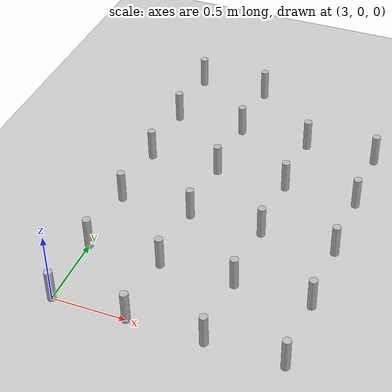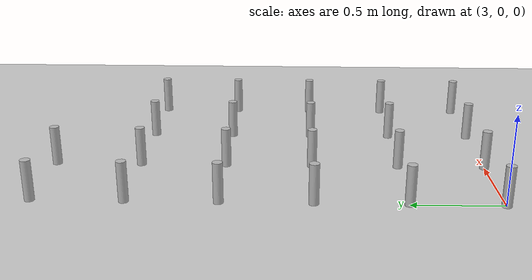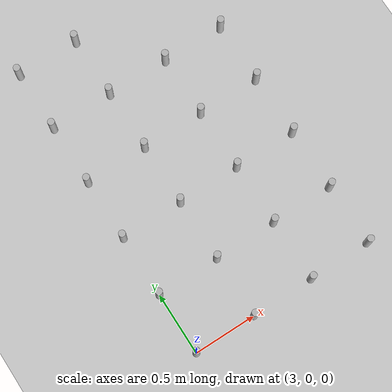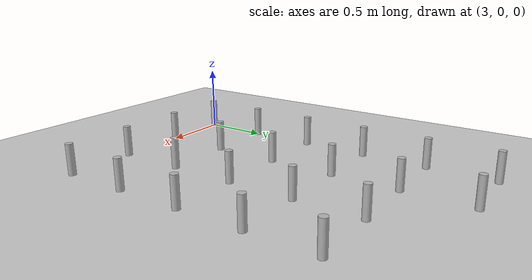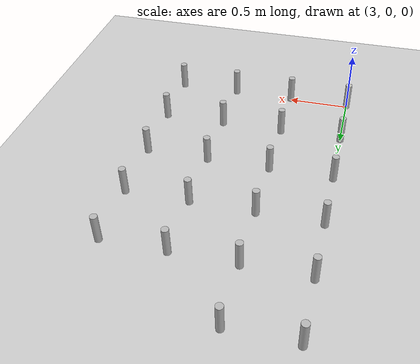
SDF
<sdf version="1.6">
 <world name="default">
  <model name="ground_plane">
   <static>1</static>
   <link name="link">
    <collision name="collision">
     <geometry><plane><normal>0 0 1</normal><size>100 100</size></plane></geometry>
     <surface><friction><ode><mu>100</mu><mu2>50</mu2></ode></friction></surface>
    </collision>
    <visual name="visual">
     <cast_shadows>0</cast_shadows>
     <geometry><plane><normal>0 0 1</normal><size>100 100</size></plane></geometry>
     <material>
      <script><uri>file://media/materials/scripts/gazebo.material</uri><name>Gazebo/Grey</name></script>
     </material>
    </visual>
   </link>
  </model>
  <model name="can3.00.0">
   <link name="link">
    <pose>0 0 0.115 0 -0 0</pose>
    <inertial>
     <mass>39</mass>
     <inertia><ixx>0.00058</ixx><ixy>0</ixy><ixz>0</ixz><iyy>0.00058</iyy><iyz>0</iyz><izz>0.00019</izz></inertia>
    </inertial>
    <collision name="collision">
     <geometry><cylinder><radius>0.0275</radius><length>0.23</length></cylinder></geometry>
    </collision>
    <visual name="visual">
     <geometry><cylinder><radius>0.0275</radius><length>0.23</length></cylinder></geometry>
     <material>
      <script>
       <uri>model://beer/materials/scripts</uri>
       <uri>model://beer/materials/textures</uri>
       <name>Beer/Diffuse</name>
      </script>
     </material>
    </visual>
   </link>
   <pose>3.0 0.0 -2e-06 1e-06 0 -9.5e-05</pose>
  </model>
  <model name="can3.00.5">
   <link name="link">
    <pose>0 0 0.115 0 -0 0</pose>
    <inertial>
     <mass>39</mass>
     <inertia><ixx>0.00058</ixx><ixy>0</ixy><ixz>0</ixz><iyy>0.00058</iyy><iyz>0</iyz><izz>0.00019</izz></inertia>
    </inertial>
    <collision name="collision">
     <geometry><cylinder><radius>0.0275</radius><length>0.23</length></cylinder></geometry>
    </collision>
    <visual name="visual">
     <geometry><cylinder><radius>0.0275</radius><length>0.23</length></cylinder></geometry>
     <material>
      <script>
       <uri>model://beer/materials/scripts</uri>
       <uri>model://beer/materials/textures</uri>
       <name>Beer/Diffuse</name>
      </script>
     </material>
    </visual>
   </link>
   <pose>3.0 0.5 -2e-06 1e-06 0 -9.5e-05</pose>
  </model>
  <model name="can3.01.0">
   <link name="link">
    <pose>0 0 0.115 0 -0 0</pose>
    <inertial>
     <mass>39</mass>
     <inertia><ixx>0.00058</ixx><ixy>0</ixy><ixz>0</ixz><iyy>0.00058</iyy><iyz>0</iyz><izz>0.00019</izz></inertia>
    </inertial>
    <collision name="collision">
     <geometry><cylinder><radius>0.0275</radius><length>0.23</length></cylinder></geometry>
    </collision>
    <visual name="visual">
     <geometry><cylinder><radius>0.0275</radius><length>0.23</length></cylinder></geometry>
     <material>
      <script>
       <uri>model://beer/materials/scripts</uri>
       <uri>model://beer/materials/textures</uri>
       <name>Beer/Diffuse</name>
      </script>
     </material>
    </visual>
   </link>
   <pose>3.0 1.0 -2e-06 1e-06 0 -9.5e-05</pose>
  </model>
  <model name="can3.01.5">
   <link name="link">
    <pose>0 0 0.115 0 -0 0</pose>
    <inertial>
     <mass>39</mass>
     <inertia><ixx>0.00058</ixx><ixy>0</ixy><ixz>0</ixz><iyy>0.00058</iyy><iyz>0</iyz><izz>0.00019</izz></inertia>
    </inertial>
    <collision name="collision">
     <geometry><cylinder><radius>0.0275</radius><length>0.23</length></cylinder></geometry>
    </collision>
    <visual name="visual">
     <geometry><cylinder><radius>0.0275</radius><length>0.23</length></cylinder></geometry>
     <material>
      <script>
       <uri>model://beer/materials/scripts</uri>
       <uri>model://beer/materials/textures</uri>
       <name>Beer/Diffuse</name>
      </script>
     </material>
    </visual>
   </link>
   <pose>3.0 1.5 -2e-06 1e-06 0 -9.5e-05</pose>
  </model>
  <model name="can3.02.0">
   <link name="link">
    <pose>0 0 0.115 0 -0 0</pose>
    <inertial>
     <mass>39</mass>
     <inertia><ixx>0.00058</ixx><ixy>0</ixy><ixz>0</ixz><iyy>0.00058</iyy><iyz>0</iyz><izz>0.00019</izz></inertia>
    </inertial>
    <collision name="collision">
     <geometry><cylinder><radius>0.0275</radius><length>0.23</length></cylinder></geometry>
    </collision>
    <visual name="visual">
     <geometry><cylinder><radius>0.0275</radius><length>0.23</length></cylinder></geometry>
     <material>
      <script>
       <uri>model://beer/materials/scripts</uri>
       <uri>model://beer/materials/textures</uri>
       <name>Beer/Diffuse</name>
      </script>
     </material>
    </visual>
   </link>
   <pose>3.0 2.0 -2e-06 1e-06 0 -9.5e-05</pose>
  </model>
  <model name="can3.02.5">
   <link name="link">
    <pose>0 0 0.115 0 -0 0</pose>
    <inertial>
     <mass>39</mass>
     <inertia><ixx>0.00058</ixx><ixy>0</ixy><ixz>0</ixz><iyy>0.00058</iyy><iyz>0</iyz><izz>0.00019</izz></inertia>
    </inertial>
    <collision name="collision">
     <geometry><cylinder><radius>0.0275</radius><length>0.23</length></cylinder></geometry>
    </collision>
    <visual name="visual">
     <geometry><cylinder><radius>0.0275</radius><length>0.23</length></cylinder></geometry>
     <material>
      <script>
       <uri>model://beer/materials/scripts</uri>
       <uri>model://beer/materials/textures</uri>
       <name>Beer/Diffuse</name>
      </script>
     </material>
    </visual>
   </link>
   <pose>3.0 2.5 -2e-06 1e-06 0 -9.5e-05</pose>
  </model>
  <model name="can3.50.0">
   <link name="link">
    <pose>0 0 0.115 0 -0 0</pose>
    <inertial>
     <mass>39</mass>
     <inertia><ixx>0.00058</ixx><ixy>0</ixy><ixz>0</ixz><iyy>0.00058</iyy><iyz>0</iyz><izz>0.00019</izz></inertia>
    </inertial>
    <collision name="collision">
     <geometry><cylinder><radius>0.0275</radius><length>0.23</length></cylinder></geometry>
    </collision>
    <visual name="visual">
     <geometry><cylinder><radius>0.0275</radius><length>0.23</length></cylinder></geometry>
     <material>
      <script>
       <uri>model://beer/materials/scripts</uri>
       <uri>model://beer/materials/textures</uri>
       <name>Beer/Diffuse</name>
      </script>
     </material>
    </visual>
   </link>
   <pose>3.5 0.0 -2e-06 1e-06 0 -9.5e-05</pose>
  </model>
  <model name="can3.50.5">
   <link name="link">
    <pose>0 0 0.115 0 -0 0</pose>
    <inertial>
     <mass>39</mass>
     <inertia><ixx>0.00058</ixx><ixy>0</ixy><ixz>0</ixz><iyy>0.00058</iyy><iyz>0</iyz><izz>0.00019</izz></inertia>
    </inertial>
    <collision name="collision">
     <geometry><cylinder><radius>0.0275</radius><length>0.23</length></cylinder></geometry>
    </collision>
    <visual name="visual">
     <geometry><cylinder><radius>0.0275</radius><length>0.23</length></cylinder></geometry>
     <material>
      <script>
       <uri>model://beer/materials/scripts</uri>
       <uri>model://beer/materials/textures</uri>
       <name>Beer/Diffuse</name>
      </script>
     </material>
    </visual>
   </link>
   <pose>3.5 0.5 -2e-06 1e-06 0 -9.5e-05</pose>
  </model>
  <model name="can3.51.0">
   <link name="link">
    <pose>0 0 0.115 0 -0 0</pose>
    <inertial>
     <mass>39</mass>
     <inertia><ixx>0.00058</ixx><ixy>0</ixy><ixz>0</ixz><iyy>0.00058</iyy><iyz>0</iyz><izz>0.00019</izz></inertia>
    </inertial>
    <collision name="collision">
     <geometry><cylinder><radius>0.0275</radius><length>0.23</length></cylinder></geometry>
    </collision>
    <visual name="visual">
     <geometry><cylinder><radius>0.0275</radius><length>0.23</length></cylinder></geometry>
     <material>
      <script>
       <uri>model://beer/materials/scripts</uri>
       <uri>model://beer/materials/textures</uri>
       <name>Beer/Diffuse</name>
      </script>
     </material>
    </visual>
   </link>
   <pose>3.5 1.0 -2e-06 1e-06 0 -9.5e-05</pose>
  </model>
  <model name="can3.51.5">
   <link name="link">
    <pose>0 0 0.115 0 -0 0</pose>
    <inertial>
     <mass>39</mass>
     <inertia><ixx>0.00058</ixx><ixy>0</ixy><ixz>0</ixz><iyy>0.00058</iyy><iyz>0</iyz><izz>0.00019</izz></inertia>
    </inertial>
    <collision name="collision">
     <geometry><cylinder><radius>0.0275</radius><length>0.23</length></cylinder></geometry>
    </collision>
    <visual name="visual">
     <geometry><cylinder><radius>0.0275</radius><length>0.23</length></cylinder></geometry>
     <material>
      <script>
       <uri>model://beer/materials/scripts</uri>
       <uri>model://beer/materials/textures</uri>
       <name>Beer/Diffuse</name>
      </script>
     </material>
    </visual>
   </link>
   <pose>3.5 1.5 -2e-06 1e-06 0 -9.5e-05</pose>
  </model>
  <model name="can3.52.0">
   <link name="link">
    <pose>0 0 0.115 0 -0 0</pose>
    <inertial>
     <mass>39</mass>
     <inertia><ixx>0.00058</ixx><ixy>0</ixy><ixz>0</ixz><iyy>0.00058</iyy><iyz>0</iyz><izz>0.00019</izz></inertia>
    </inertial>
    <collision name="collision">
     <geometry><cylinder><radius>0.0275</radius><length>0.23</length></cylinder></geometry>
    </collision>
    <visual name="visual">
     <geometry><cylinder><radius>0.0275</radius><length>0.23</length></cylinder></geometry>
     <material>
      <script>
       <uri>model://beer/materials/scripts</uri>
       <uri>model://beer/materials/textures</uri>
       <name>Beer/Diffuse</name>
      </script>
     </material>
    </visual>
   </link>
   <pose>3.5 2.0 -2e-06 1e-06 0 -9.5e-05</pose>
  </model>
  <model name="can3.52.5">
   <link name="link">
    <pose>0 0 0.115 0 -0 0</pose>
    <inertial>
     <mass>39</mass>
     <inertia><ixx>0.00058</ixx><ixy>0</ixy><ixz>0</ixz><iyy>0.00058</iyy><iyz>0</iyz><izz>0.00019</izz></inertia>
    </inertial>
    <collision name="collision">
     <geometry><cylinder><radius>0.0275</radius><length>0.23</length></cylinder></geometry>
    </collision>
    <visual name="visual">
     <geometry><cylinder><radius>0.0275</radius><length>0.23</length></cylinder></geometry>
     <material>
      <script>
       <uri>model://beer/materials/scripts</uri>
       <uri>model://beer/materials/textures</uri>
       <name>Beer/Diffuse</name>
      </script>
     </material>
    </visual>
   </link>
   <pose>3.5 2.5 -2e-06 1e-06 0 -9.5e-05</pose>
  </model>
  <model name="can4.00.0">
   <link name="link">
    <pose>0 0 0.115 0 -0 0</pose>
    <inertial>
     <mass>39</mass>
     <inertia><ixx>0.00058</ixx><ixy>0</ixy><ixz>0</ixz><iyy>0.00058</iyy><iyz>0</iyz><izz>0.00019</izz></inertia>
    </inertial>
    <collision name="collision">
     <geometry><cylinder><radius>0.0275</radius><length>0.23</length></cylinder></geometry>
    </collision>
    <visual name="visual">
     <geometry><cylinder><radius>0.0275</radius><length>0.23</length></cylinder></geometry>
     <material>
      <script>
       <uri>model://beer/materials/scripts</uri>
       <uri>model://beer/materials/textures</uri>
       <name>Beer/Diffuse</name>
      </script>
     </material>
    </visual>
   </link>
   <pose>4.0 0.0 -2e-06 1e-06 0 -9.5e-05</pose>
  </model>
  <model name="can4.00.5">
   <link name="link">
    <pose>0 0 0.115 0 -0 0</pose>
    <inertial>
     <mass>39</mass>
     <inertia><ixx>0.00058</ixx><ixy>0</ixy><ixz>0</ixz><iyy>0.00058</iyy><iyz>0</iyz><izz>0.00019</izz></inertia>
    </inertial>
    <collision name="collision">
     <geometry><cylinder><radius>0.0275</radius><length>0.23</length></cylinder></geometry>
    </collision>
    <visual name="visual">
     <geometry><cylinder><radius>0.0275</radius><length>0.23</length></cylinder></geometry>
     <material>
      <script>
       <uri>model://beer/materials/scripts</uri>
       <uri>model://beer/materials/textures</uri>
       <name>Beer/Diffuse</name>
      </script>
     </material>
    </visual>
   </link>
   <pose>4.0 0.5 -2e-06 1e-06 0 -9.5e-05</pose>
  </model>
  <model name="can4.01.0">
   <link name="link">
    <pose>0 0 0.115 0 -0 0</pose>
    <inertial>
     <mass>39</mass>
     <inertia><ixx>0.00058</ixx><ixy>0</ixy><ixz>0</ixz><iyy>0.00058</iyy><iyz>0</iyz><izz>0.00019</izz></inertia>
    </inertial>
    <collision name="collision">
     <geometry><cylinder><radius>0.0275</radius><length>0.23</length></cylinder></geometry>
    </collision>
    <visual name="visual">
     <geometry><cylinder><radius>0.0275</radius><length>0.23</length></cylinder></geometry>
     <material>
      <script>
       <uri>model://beer/materials/scripts</uri>
       <uri>model://beer/materials/textures</uri>
       <name>Beer/Diffuse</name>
      </script>
     </material>
    </visual>
   </link>
   <pose>4.0 1.0 -2e-06 1e-06 0 -9.5e-05</pose>
  </model>
  <model name="can4.01.5">
   <link name="link">
    <pose>0 0 0.115 0 -0 0</pose>
    <inertial>
     <mass>39</mass>
     <inertia><ixx>0.00058</ixx><ixy>0</ixy><ixz>0</ixz><iyy>0.00058</iyy><iyz>0</iyz><izz>0.00019</izz></inertia>
    </inertial>
    <collision name="collision">
     <geometry><cylinder><radius>0.0275</radius><length>0.23</length></cylinder></geometry>
    </collision>
    <visual name="visual">
     <geometry><cylinder><radius>0.0275</radius><length>0.23</length></cylinder></geometry>
     <material>
      <script>
       <uri>model://beer/materials/scripts</uri>
       <uri>model://beer/materials/textures</uri>
       <name>Beer/Diffuse</name>
      </script>
     </material>
    </visual>
   </link>
   <pose>4.0 1.5 -2e-06 1e-06 0 -9.5e-05</pose>
  </model>
  <model name="can4.02.0">
   <link name="link">
    <pose>0 0 0.115 0 -0 0</pose>
    <inertial>
     <mass>39</mass>
     <inertia><ixx>0.00058</ixx><ixy>0</ixy><ixz>0</ixz><iyy>0.00058</iyy><iyz>0</iyz><izz>0.00019</izz></inertia>
    </inertial>
    <collision name="collision">
     <geometry><cylinder><radius>0.0275</radius><length>0.23</length></cylinder></geometry>
    </collision>
    <visual name="visual">
     <geometry><cylinder><radius>0.0275</radius><length>0.23</length></cylinder></geometry>
     <material>
      <script>
       <uri>model://beer/materials/scripts</uri>
       <uri>model://beer/materials/textures</uri>
       <name>Beer/Diffuse</name>
      </script>
     </material>
    </visual>
   </link>
   <pose>4.0 2.0 -2e-06 1e-06 0 -9.5e-05</pose>
  </model>
  <model name="can4.50.0">
   <link name="link">
    <pose>0 0 0.115 0 -0 0</pose>
    <inertial>
     <mass>39</mass>
     <inertia><ixx>0.00058</ixx><ixy>0</ixy><ixz>0</ixz><iyy>0.00058</iyy><iyz>0</iyz><izz>0.00019</izz></inertia>
    </inertial>
    <collision name="collision">
     <geometry><cylinder><radius>0.0275</radius><length>0.23</length></cylinder></geometry>
    </collision>
    <visual name="visual">
     <geometry><cylinder><radius>0.0275</radius><length>0.23</length></cylinder></geometry>
     <material>
      <script>
       <uri>model://beer/materials/scripts</uri>
       <uri>model://beer/materials/textures</uri>
       <name>Beer/Diffuse</name>
      </script>
     </material>
    </visual>
   </link>
   <pose>4.5 0.0 -2e-06 1e-06 0 -9.5e-05</pose>
  </model>
  <model name="can4.50.5">
   <link name="link">
    <pose>0 0 0.115 0 -0 0</pose>
    <inertial>
     <mass>39</mass>
     <inertia><ixx>0.00058</ixx><ixy>0</ixy><ixz>0</ixz><iyy>0.00058</iyy><iyz>0</iyz><izz>0.00019</izz></inertia>
    </inertial>
    <collision name="collision">
     <geometry><cylinder><radius>0.0275</radius><length>0.23</length></cylinder></geometry>
    </collision>
    <visual name="visual">
     <geometry><cylinder><radius>0.0275</radius><length>0.23</length></cylinder></geometry>
     <material>
      <script>
       <uri>model://beer/materials/scripts</uri>
       <uri>model://beer/materials/textures</uri>
       <name>Beer/Diffuse</name>
      </script>
     </material>
    </visual>
   </link>
   <pose>4.5 0.5 -2e-06 1e-06 0 -9.5e-05</pose>
  </model>
  <model name="can4.51.0">
   <link name="link">
    <pose>0 0 0.115 0 -0 0</pose>
    <inertial>
     <mass>39</mass>
     <inertia><ixx>0.00058</ixx><ixy>0</ixy><ixz>0</ixz><iyy>0.00058</iyy><iyz>0</iyz><izz>0.00019</izz></inertia>
    </inertial>
    <collision name="collision">
     <geometry><cylinder><radius>0.0275</radius><length>0.23</length></cylinder></geometry>
    </collision>
    <visual name="visual">
     <geometry><cylinder><radius>0.0275</radius><length>0.23</length></cylinder></geometry>
     <material>
      <script>
       <uri>model://beer/materials/scripts</uri>
       <uri>model://beer/materials/textures</uri>
       <name>Beer/Diffuse</name>
      </script>
     </material>
    </visual>
   </link>
   <pose>4.5 1.0 -2e-06 1e-06 0 -9.5e-05</pose>
  </model>
  <model name="can4.51.5">
   <link name="link">
    <pose>0 0 0.115 0 -0 0</pose>
    <inertial>
     <mass>39</mass>
     <inertia><ixx>0.00058</ixx><ixy>0</ixy><ixz>0</ixz><iyy>0.00058</iyy><iyz>0</iyz><izz>0.00019</izz></inertia>
    </inertial>
    <collision name="collision">
     <geometry><cylinder><radius>0.0275</radius><length>0.23</length></cylinder></geometry>
    </collision>
    <visual name="visual">
     <geometry><cylinder><radius>0.0275</radius><length>0.23</length></cylinder></geometry>
     <material>
      <script>
       <uri>model://beer/materials/scripts</uri>
       <uri>model://beer/materials/textures</uri>
       <name>Beer/Diffuse</name>
      </script>
     </material>
    </visual>
   </link>
   <pose>4.5 1.5 -2e-06 1e-06 0 -9.5e-05</pose>
  </model>
  <model name="can4.52.0">
   <link name="link">
    <pose>0 0 0.115 0 -0 0</pose>
    <inertial>
     <mass>39</mass>
     <inertia><ixx>0.00058</ixx><ixy>0</ixy><ixz>0</ixz><iyy>0.00058</iyy><iyz>0</iyz><izz>0.00019</izz></inertia>
    </inertial>
    <collision name="collision">
     <geometry><cylinder><radius>0.0275</radius><length>0.23</length></cylinder></geometry>
    </collision>
    <visual name="visual">
     <geometry><cylinder><radius>0.0275</radius><length>0.23</length></cylinder></geometry>
     <material>
      <script>
       <uri>model://beer/materials/scripts</uri>
       <uri>model://beer/materials/textures</uri>
       <name>Beer/Diffuse</name>
      </script>
     </material>
    </visual>
   </link>
   <pose>4.5 2.0 -2e-06 1e-06 0 -9.5e-05</pose>
  </model>
 </world>
</sdf>
